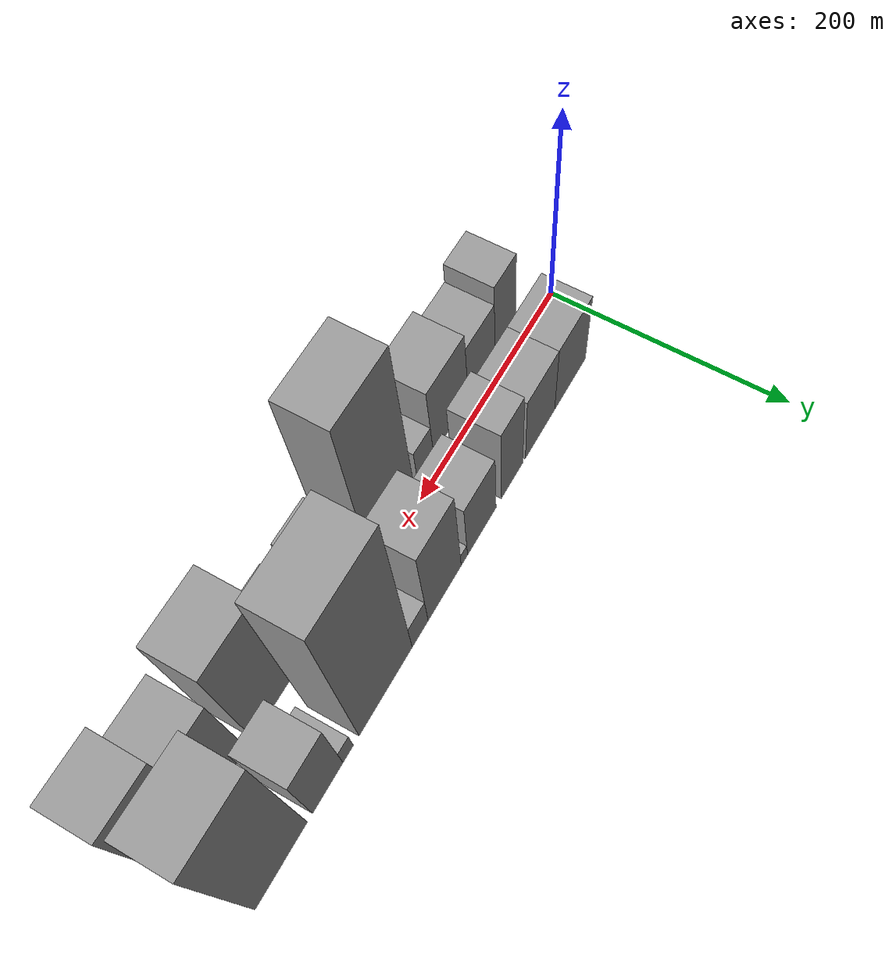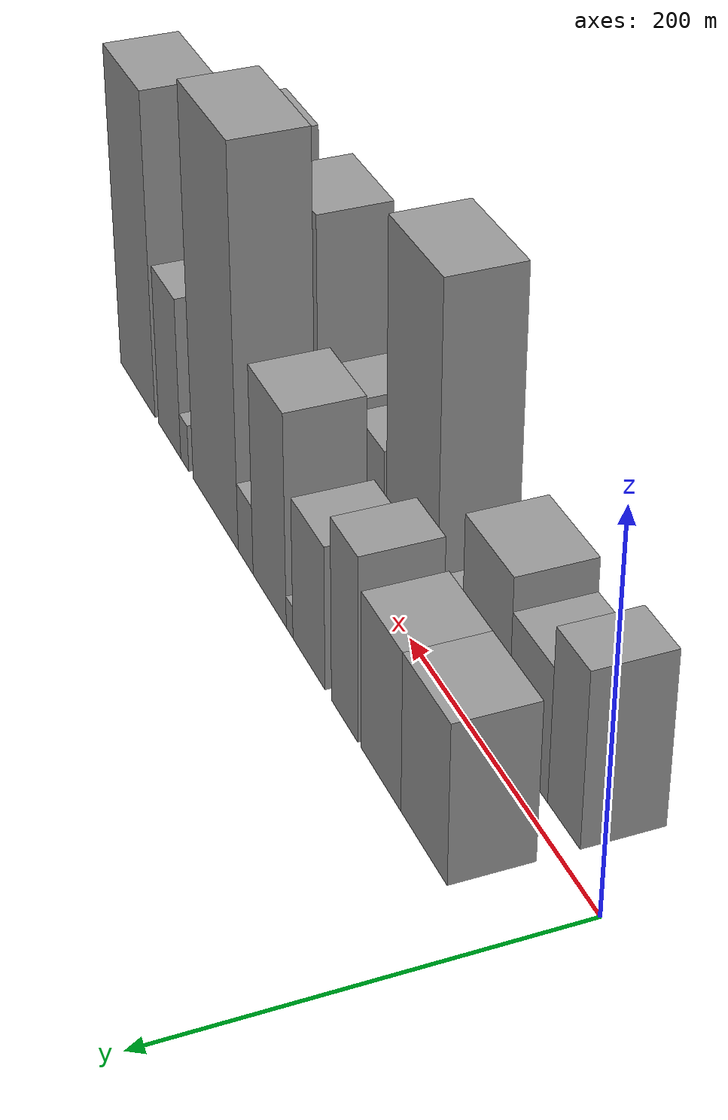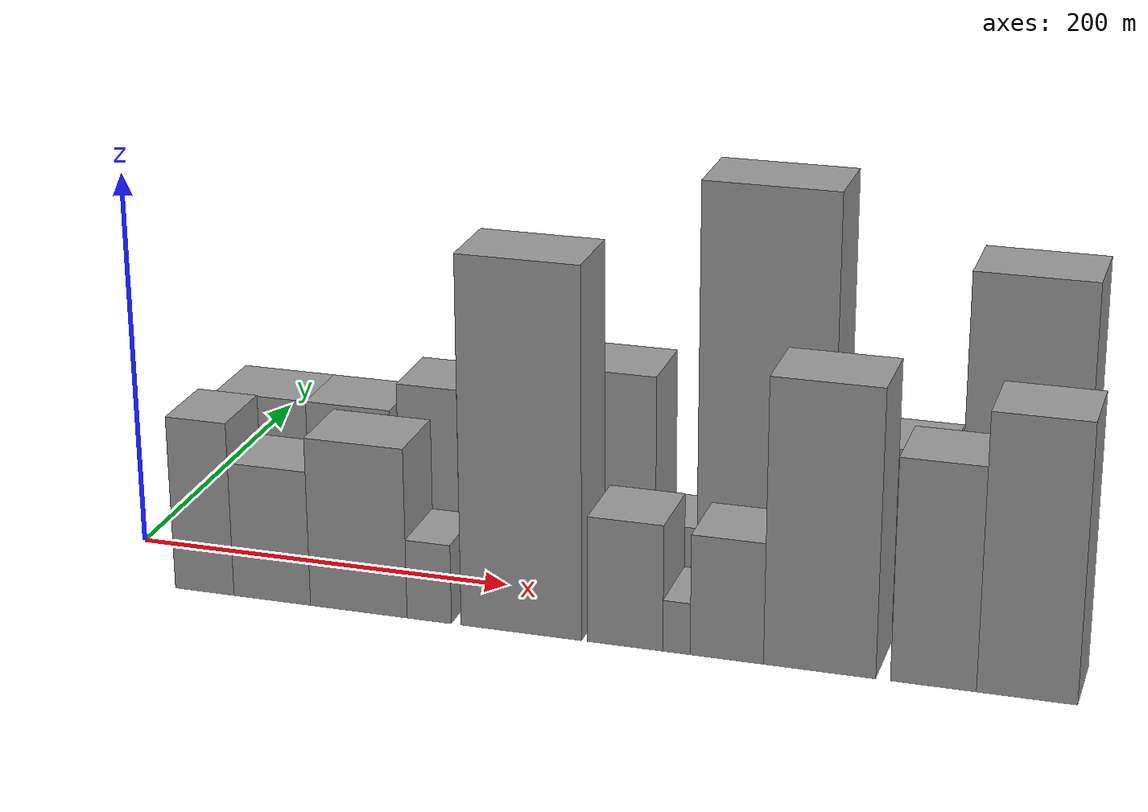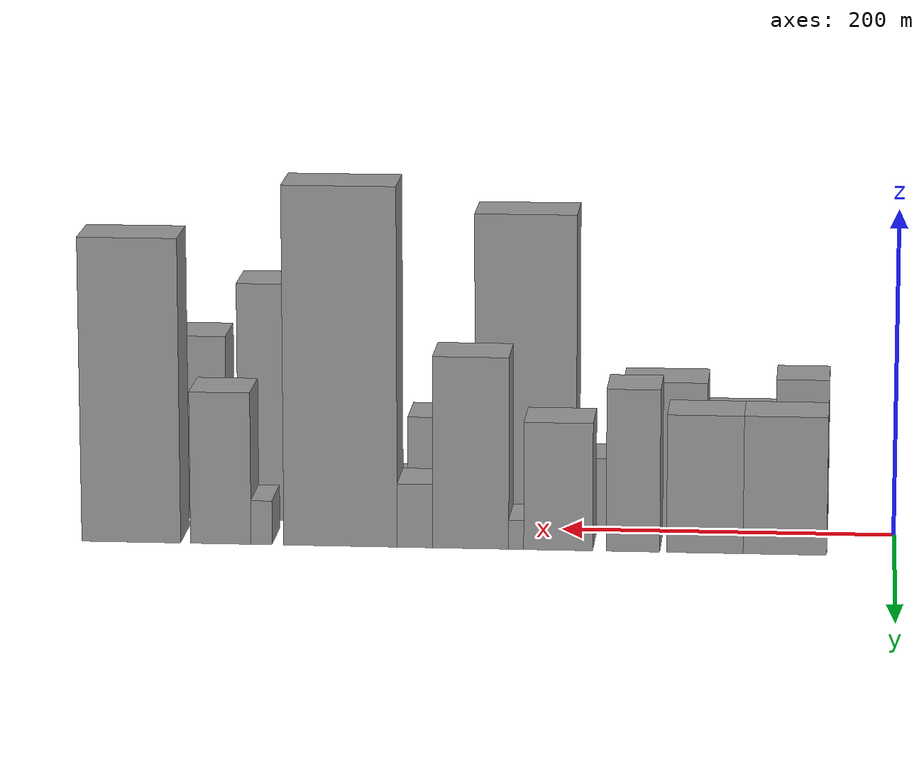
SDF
<sdf version="1.6">
 <world name="default">
  <scene>
   <sky><clouds><speed>12</speed></clouds></sky>
   <ambient>0.4 0.4 0.4 1</ambient>
   <background>0.7 0.7 0.7 1</background>
   <shadows>1</shadows>
  </scene>
  <gravity>0 0 -9.8066</gravity>
  <magnetic_field>6e-06 2.3e-05 -4.2e-05</magnetic_field>
  <physics default="0" name="default_physics" type="ode">
   <ode>
    <solver>
     <type>quick</type>
     <iters>10</iters>
     <sor>1.0</sor>
     <use_dynamic_moi_rescaling>0</use_dynamic_moi_rescaling>
    </solver>
    <constraints>
     <cfm>0</cfm>
     <erp>0.2</erp>
     <contact_max_correcting_vel>100</contact_max_correcting_vel>
     <contact_surface_layer>0.001</contact_surface_layer>
    </constraints>
   </ode>
   <max_step_size>0.004</max_step_size>
   <real_time_factor>1</real_time_factor>
   <real_time_update_rate>250</real_time_update_rate>
  </physics>
  <light name="sun" type="directional">
   <pose>0 0 10 0 0 0</pose>
   <diffuse>0.8 0.8 0.8 1</diffuse>
   <specular>0.2 0.2 0.2 1</specular>
   <attenuation>
    <range>1000</range>
    <constant>0.9</constant>
    <linear>0.01</linear>
    <quadratic>0.001</quadratic>
   </attenuation>
   <direction>-0.5 0.1 -0.9</direction>
  </light>
  <model name="building_1">
   <static>1</static>
   <pose>64.8346 30.0000 0 0.000000 0.000000 1.570796</pose>
   <link name="link">
    <pose>0 0 42.00 0 0 0</pose>
    <collision name="collision"><geometry><box><size>40.0000 49.6691 84.0000</size></box></geometry></collision>
    <visual name="visual">
     <cast_shadows>0</cast_shadows>
     <geometry><box><size>40.0000 49.6691 84.0000</size></box></geometry>
     <material>
      <script>
       <uri>model://grey_wall/materials/scripts</uri>
       <uri>model://grey_wall/materials/textures</uri>
       <name>vrc/grey_wall</name>
      </script>
     </material>
    </visual>
   </link>
  </model>
  <model name="building_2">
   <static>1</static>
   <pose>112.4177 30.0000 0 0.000000 0.000000 1.570796</pose>
   <link name="link">
    <pose>0 0 42.00 0 0 0</pose>
    <collision name="collision"><geometry><box><size>40.0000 45.4972 84.0000</size></box></geometry></collision>
    <visual name="visual">
     <cast_shadows>0</cast_shadows>
     <geometry><box><size>40.0000 45.4972 84.0000</size></box></geometry>
     <material>
      <script>
       <uri>model://grey_wall/materials/scripts</uri>
       <uri>model://grey_wall/materials/textures</uri>
       <name>vrc/grey_wall</name>
      </script>
     </material>
    </visual>
   </link>
  </model>
  <model name="building_3">
   <static>1</static>
   <pose>155.1606 30.0000 0 0.000000 0.000000 1.570796</pose>
   <link name="link">
    <pose>0 0 49.50 0 0 0</pose>
    <collision name="collision"><geometry><box><size>40.0000 31.9887 99.0000</size></box></geometry></collision>
    <visual name="visual">
     <cast_shadows>0</cast_shadows>
     <geometry><box><size>40.0000 31.9887 99.0000</size></box></geometry>
     <material>
      <script>
       <uri>model://grey_wall/materials/scripts</uri>
       <uri>model://grey_wall/materials/textures</uri>
       <name>vrc/grey_wall</name>
      </script>
     </material>
    </visual>
   </link>
  </model>
  <model name="building_4">
   <static>1</static>
   <pose>199.7662 30.0000 0 0.000000 0.000000 1.570796</pose>
   <link name="link">
    <pose>0 0 39.00 0 0 0</pose>
    <collision name="collision"><geometry><box><size>40.0000 41.2224 78.0000</size></box></geometry></collision>
    <visual name="visual">
     <cast_shadows>0</cast_shadows>
     <geometry><box><size>40.0000 41.2224 78.0000</size></box></geometry>
     <material>
      <script>
       <uri>model://grey_wall/materials/scripts</uri>
       <uri>model://grey_wall/materials/textures</uri>
       <name>vrc/grey_wall</name>
      </script>
     </material>
    </visual>
   </link>
  </model>
  <model name="building_5">
   <static>1</static>
   <pose>224.8412 30.0000 0 0.000000 0.000000 1.570796</pose>
   <link name="link">
    <pose>0 0 9.00 0 0 0</pose>
    <collision name="collision"><geometry><box><size>40.0000 8.9275 18.0000</size></box></geometry></collision>
    <visual name="visual">
     <cast_shadows>0</cast_shadows>
     <geometry><box><size>40.0000 8.9275 18.0000</size></box></geometry>
     <material>
      <script>
       <uri>model://grey_wall/materials/scripts</uri>
       <uri>model://grey_wall/materials/textures</uri>
       <name>vrc/grey_wall</name>
      </script>
     </material>
    </visual>
   </link>
  </model>
  <model name="building_6">
   <static>1</static>
   <pose>252.0580 30.0000 0 0.000000 0.000000 1.570796</pose>
   <link name="link">
    <pose>0 0 58.50 0 0 0</pose>
    <collision name="collision"><geometry><box><size>40.0000 45.5061 117.0000</size></box></geometry></collision>
    <visual name="visual">
     <cast_shadows>0</cast_shadows>
     <geometry><box><size>40.0000 45.5061 117.0000</size></box></geometry>
     <material>
      <script>
       <uri>model://grey_wall/materials/scripts</uri>
       <uri>model://grey_wall/materials/textures</uri>
       <name>vrc/grey_wall</name>
      </script>
     </material>
    </visual>
   </link>
  </model>
  <model name="building_7">
   <static>1</static>
   <pose>285.4624 30.0000 0 0.000000 0.000000 1.570796</pose>
   <link name="link">
    <pose>0 0 19.50 0 0 0</pose>
    <collision name="collision"><geometry><box><size>40.0000 21.3026 39.0000</size></box></geometry></collision>
    <visual name="visual">
     <cast_shadows>0</cast_shadows>
     <geometry><box><size>40.0000 21.3026 39.0000</size></box></geometry>
     <material>
      <script>
       <uri>model://grey_wall/materials/scripts</uri>
       <uri>model://grey_wall/materials/textures</uri>
       <name>vrc/grey_wall</name>
      </script>
     </material>
    </visual>
   </link>
  </model>
  <model name="building_8">
   <static>1</static>
   <pose>330.2180 30.0000 0 0.000000 0.000000 1.570796</pose>
   <link name="link">
    <pose>0 0 109.50 0 0 0</pose>
    <collision name="collision"><geometry><box><size>40.0000 68.2086 219.0000</size></box></geometry></collision>
    <visual name="visual">
     <cast_shadows>0</cast_shadows>
     <geometry><box><size>40.0000 68.2086 219.0000</size></box></geometry>
     <material>
      <script>
       <uri>model://grey_wall/materials/scripts</uri>
       <uri>model://grey_wall/materials/textures</uri>
       <name>vrc/grey_wall</name>
      </script>
     </material>
    </visual>
   </link>
  </model>
  <model name="building_9">
   <static>1</static>
   <pose>377.6654 30.0000 0 0.000000 0.000000 1.570796</pose>
   <link name="link">
    <pose>0 0 13.50 0 0 0</pose>
    <collision name="collision"><geometry><box><size>40.0000 12.6862 27.0000</size></box></geometry></collision>
    <visual name="visual">
     <cast_shadows>0</cast_shadows>
     <geometry><box><size>40.0000 12.6862 27.0000</size></box></geometry>
     <material>
      <script>
       <uri>model://grey_wall/materials/scripts</uri>
       <uri>model://grey_wall/materials/textures</uri>
       <name>vrc/grey_wall</name>
      </script>
     </material>
    </visual>
   </link>
  </model>
  <model name="building_10">
   <static>1</static>
   <pose>402.2685 30.0000 0 0.000000 0.000000 1.570796</pose>
   <link name="link">
    <pose>0 0 46.50 0 0 0</pose>
    <collision name="collision"><geometry><box><size>40.0000 36.5198 93.0000</size></box></geometry></collision>
    <visual name="visual">
     <cast_shadows>0</cast_shadows>
     <geometry><box><size>40.0000 36.5198 93.0000</size></box></geometry>
     <material>
      <script>
       <uri>model://grey_wall/materials/scripts</uri>
       <uri>model://grey_wall/materials/textures</uri>
       <name>vrc/grey_wall</name>
      </script>
     </material>
    </visual>
   </link>
  </model>
  <model name="building_11">
   <static>1</static>
   <pose>456.3955 30.0000 0 0.000000 0.000000 1.570796</pose>
   <link name="link">
    <pose>0 0 93.00 0 0 0</pose>
    <collision name="collision"><geometry><box><size>40.0000 59.7343 186.0000</size></box></geometry></collision>
    <visual name="visual">
     <cast_shadows>0</cast_shadows>
     <geometry><box><size>40.0000 59.7343 186.0000</size></box></geometry>
     <material>
      <script>
       <uri>model://grey_wall/materials/scripts</uri>
       <uri>model://grey_wall/materials/textures</uri>
       <name>vrc/grey_wall</name>
      </script>
     </material>
    </visual>
   </link>
  </model>
  <model name="building_12">
   <static>1</static>
   <pose>55.9787 -30.0000 0 0.000000 0.000000 1.570796</pose>
   <link name="link">
    <pose>0 0 46.50 0 0 0</pose>
    <collision name="collision"><geometry><box><size>40.0000 31.9575 93.0000</size></box></geometry></collision>
    <visual name="visual">
     <cast_shadows>0</cast_shadows>
     <geometry><box><size>40.0000 31.9575 93.0000</size></box></geometry>
     <material>
      <script>
       <uri>model://grey_wall/materials/scripts</uri>
       <uri>model://grey_wall/materials/textures</uri>
       <name>vrc/grey_wall</name>
      </script>
     </material>
    </visual>
   </link>
  </model>
  <model name="building_13">
   <static>1</static>
   <pose>92.5527 -30.0000 0 0.000000 0.000000 1.570796</pose>
   <link name="link">
    <pose>0 0 36.00 0 0 0</pose>
    <collision name="collision"><geometry><box><size>40.0000 41.1905 72.0000</size></box></geometry></collision>
    <visual name="visual">
     <cast_shadows>0</cast_shadows>
     <geometry><box><size>40.0000 41.1905 72.0000</size></box></geometry>
     <material>
      <script>
       <uri>model://grey_wall/materials/scripts</uri>
       <uri>model://grey_wall/materials/textures</uri>
       <name>vrc/grey_wall</name>
      </script>
     </material>
    </visual>
   </link>
  </model>
  <model name="building_14">
   <static>1</static>
   <pose>138.7073 -30.0000 0 0.000000 0.000000 1.570796</pose>
   <link name="link">
    <pose>0 0 45.00 0 0 0</pose>
    <collision name="collision"><geometry><box><size>40.0000 51.1188 90.0000</size></box></geometry></collision>
    <visual name="visual">
     <cast_shadows>0</cast_shadows>
     <geometry><box><size>40.0000 51.1188 90.0000</size></box></geometry>
     <material>
      <script>
       <uri>model://grey_wall/materials/scripts</uri>
       <uri>model://grey_wall/materials/textures</uri>
       <name>vrc/grey_wall</name>
      </script>
     </material>
    </visual>
   </link>
  </model>
  <model name="building_15">
   <static>1</static>
   <pose>175.8539 -30.0000 0 0.000000 0.000000 1.570796</pose>
   <link name="link">
    <pose>0 0 21.00 0 0 0</pose>
    <collision name="collision"><geometry><box><size>40.0000 23.1744 42.0000</size></box></geometry></collision>
    <visual name="visual">
     <cast_shadows>0</cast_shadows>
     <geometry><box><size>40.0000 23.1744 42.0000</size></box></geometry>
     <material>
      <script>
       <uri>model://grey_wall/materials/scripts</uri>
       <uri>model://grey_wall/materials/textures</uri>
       <name>vrc/grey_wall</name>
      </script>
     </material>
    </visual>
   </link>
  </model>
  <model name="building_16">
   <static>1</static>
   <pose>223.3437 -30.0000 0 0.000000 0.000000 1.570796</pose>
   <link name="link">
    <pose>0 0 96.00 0 0 0</pose>
    <collision name="collision"><geometry><box><size>40.0000 61.8050 192.0000</size></box></geometry></collision>
    <visual name="visual">
     <cast_shadows>0</cast_shadows>
     <geometry><box><size>40.0000 61.8050 192.0000</size></box></geometry>
     <material>
      <script>
       <uri>model://grey_wall/materials/scripts</uri>
       <uri>model://grey_wall/materials/textures</uri>
       <name>vrc/grey_wall</name>
      </script>
     </material>
    </visual>
   </link>
  </model>
  <model name="building_17">
   <static>1</static>
   <pose>276.1287 -30.0000 0 0.000000 0.000000 1.570796</pose>
   <link name="link">
    <pose>0 0 33.00 0 0 0</pose>
    <collision name="collision"><geometry><box><size>40.0000 37.7650 66.0000</size></box></geometry></collision>
    <visual name="visual">
     <cast_shadows>0</cast_shadows>
     <geometry><box><size>40.0000 37.7650 66.0000</size></box></geometry>
     <material>
      <script>
       <uri>model://grey_wall/materials/scripts</uri>
       <uri>model://grey_wall/materials/textures</uri>
       <name>vrc/grey_wall</name>
      </script>
     </material>
    </visual>
   </link>
  </model>
  <model name="building_18">
   <static>1</static>
   <pose>301.7533 -30.0000 0 0.000000 0.000000 1.570796</pose>
   <link name="link">
    <pose>0 0 13.50 0 0 0</pose>
    <collision name="collision"><geometry><box><size>40.0000 13.4843 27.0000</size></box></geometry></collision>
    <visual name="visual">
     <cast_shadows>0</cast_shadows>
     <geometry><box><size>40.0000 13.4843 27.0000</size></box></geometry>
     <material>
      <script>
       <uri>model://grey_wall/materials/scripts</uri>
       <uri>model://grey_wall/materials/textures</uri>
       <name>vrc/grey_wall</name>
      </script>
     </material>
    </visual>
   </link>
  </model>
  <model name="building_19">
   <static>1</static>
   <pose>326.5711 -30.0000 0 0.000000 0.000000 1.570796</pose>
   <link name="link">
    <pose>0 0 31.50 0 0 0</pose>
    <collision name="collision"><geometry><box><size>40.0000 36.1513 63.0000</size></box></geometry></collision>
    <visual name="visual">
     <cast_shadows>0</cast_shadows>
     <geometry><box><size>40.0000 36.1513 63.0000</size></box></geometry>
     <material>
      <script>
       <uri>model://grey_wall/materials/scripts</uri>
       <uri>model://grey_wall/materials/textures</uri>
       <name>vrc/grey_wall</name>
      </script>
     </material>
    </visual>
   </link>
  </model>
  <model name="building_20">
   <static>1</static>
   <pose>371.8118 -30.0000 0 0.000000 0.000000 1.570796</pose>
   <link name="link">
    <pose>0 0 73.50 0 0 0</pose>
    <collision name="collision"><geometry><box><size>40.0000 54.3301 147.0000</size></box></geometry></collision>
    <visual name="visual">
     <cast_shadows>0</cast_shadows>
     <geometry><box><size>40.0000 54.3301 147.0000</size></box></geometry>
     <material>
      <script>
       <uri>model://grey_wall/materials/scripts</uri>
       <uri>model://grey_wall/materials/textures</uri>
       <name>vrc/grey_wall</name>
      </script>
     </material>
    </visual>
   </link>
  </model>
  <model name="building_21">
   <static>1</static>
   <pose>426.3185 -30.0000 0 0.000000 0.000000 1.570796</pose>
   <link name="link">
    <pose>0 0 57.00 0 0 0</pose>
    <collision name="collision"><geometry><box><size>40.0000 40.6833 114.0000</size></box></geometry></collision>
    <visual name="visual">
     <cast_shadows>0</cast_shadows>
     <geometry><box><size>40.0000 40.6833 114.0000</size></box></geometry>
     <material>
      <script>
       <uri>model://grey_wall/materials/scripts</uri>
       <uri>model://grey_wall/materials/textures</uri>
       <name>vrc/grey_wall</name>
      </script>
     </material>
    </visual>
   </link>
  </model>
  <model name="building_22">
   <static>1</static>
   <pose>470.2446 -30.0000 0 0.000000 0.000000 1.570796</pose>
   <link name="link">
    <pose>0 0 70.50 0 0 0</pose>
    <collision name="collision"><geometry><box><size>40.0000 47.1689 141.0000</size></box></geometry></collision>
    <visual name="visual">
     <cast_shadows>0</cast_shadows>
     <geometry><box><size>40.0000 47.1689 141.0000</size></box></geometry>
     <material>
      <script>
       <uri>model://grey_wall/materials/scripts</uri>
       <uri>model://grey_wall/materials/textures</uri>
       <name>vrc/grey_wall</name>
      </script>
     </material>
    </visual>
   </link>
  </model>
 </world>
</sdf>
